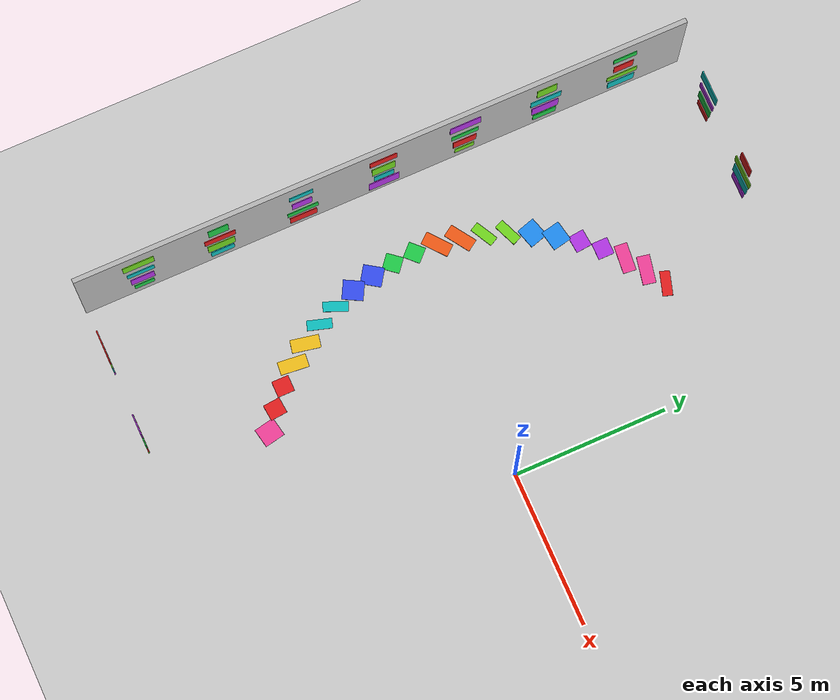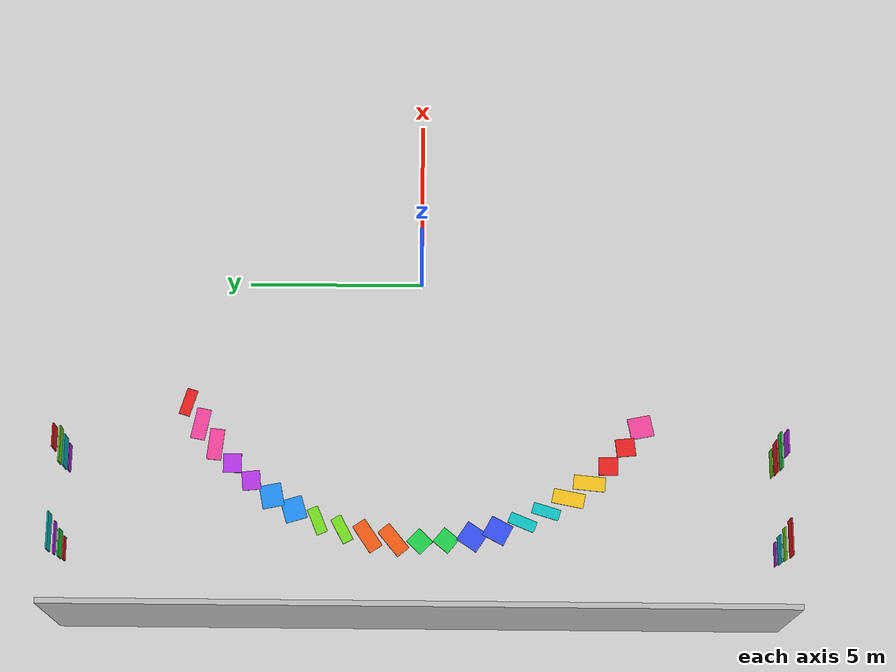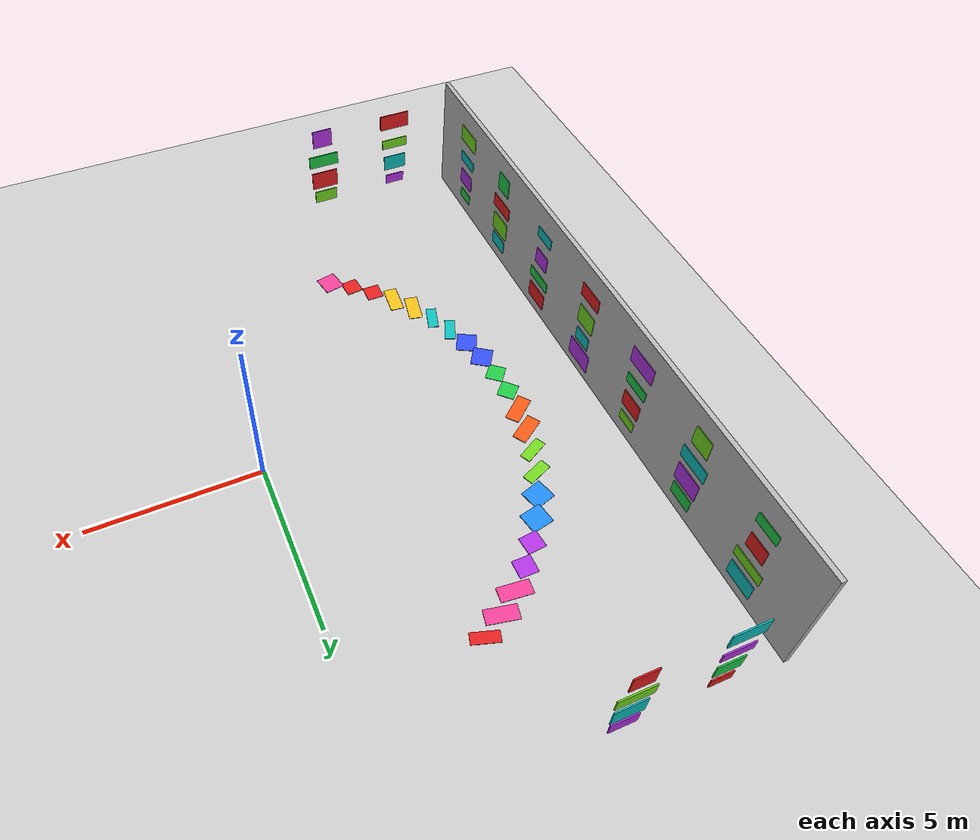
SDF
<sdf version="1.9">
 <world name="vio_marker_arena_double">
  <model name="ground_plane">
   <static>true</static>
   <link name="link">
    <collision name="collision">
     <geometry><plane><normal>0 0 1</normal><size>1 1</size></plane></geometry>
    </collision>
    <visual name="visual">
     <geometry><plane><normal>0 0 1</normal><size>500 500</size></plane></geometry>
     <material>
      <ambient>0.8 0.8 0.8 1</ambient>
      <diffuse>0.8 0.8 0.8 1</diffuse>
      <specular>0.8 0.8 0.8 1</specular>
     </material>
    </visual>
    <inertial>
     <mass>1</mass>
     <inertia><ixx>1</ixx><ixy>0</ixy><ixz>0</ixz><iyy>1</iyy><iyz>0</iyz><izz>1</izz></inertia>
    </inertial>
   </link>
  </model>
  <model name="vio_wall_west">
   <static>true</static>
   <pose>-10.0000 0.0000 2.0000 0.0000 0.0000 0.0000</pose>
   <link name="link">
    <collision name="collision"><geometry><box><size>0.1500 20.0000 4.0000</size></box></geometry></collision>
    <visual name="visual">
     <geometry><box><size>0.1500 20.0000 4.0000</size></box></geometry>
     <material>
      <ambient>0.720 0.720 0.720 1.000</ambient>
      <diffuse>0.720 0.720 0.720 1.000</diffuse>
      <specular>0.10 0.10 0.10 1</specular>
      <emissive>0 0 0 1</emissive>
     </material>
    </visual>
   </link>
  </model>
  <model name="vio_panel_north_0_0">
   <static>true</static>
   <pose>-8.0000 9.9190 0.6500 0.0000 0.0000 0.0000</pose>
   <link name="link">
    <visual name="visual">
     <geometry><box><size>0.6500 0.0350 0.3500</size></box></geometry>
     <material>
      <ambient>0.900 0.120 0.120 1.000</ambient>
      <diffuse>0.900 0.120 0.120 1.000</diffuse>
      <specular>0.10 0.10 0.10 1</specular>
      <emissive>0 0 0 1</emissive>
     </material>
    </visual>
   </link>
  </model>
  <model name="vio_panel_north_0_1">
   <static>true</static>
   <pose>-5.4000 9.9190 0.6500 0.0000 0.0000 0.0000</pose>
   <link name="link">
    <visual name="visual">
     <geometry><box><size>0.7700 0.0350 0.4500</size></box></geometry>
     <material>
      <ambient>0.700 0.200 0.900 1.000</ambient>
      <diffuse>0.700 0.200 0.900 1.000</diffuse>
      <specular>0.10 0.10 0.10 1</specular>
      <emissive>0 0 0 1</emissive>
     </material>
    </visual>
   </link>
  </model>
  <model name="vio_panel_north_1_0">
   <static>true</static>
   <pose>-8.0000 9.9190 1.3500 0.0000 0.0000 0.0000</pose>
   <link name="link">
    <visual name="visual">
     <geometry><box><size>0.7700 0.0350 0.5500</size></box></geometry>
     <material>
      <ambient>0.120 0.800 0.280 1.000</ambient>
      <diffuse>0.120 0.800 0.280 1.000</diffuse>
      <specular>0.10 0.10 0.10 1</specular>
      <emissive>0 0 0 1</emissive>
     </material>
    </visual>
   </link>
  </model>
  <model name="vio_panel_north_1_1">
   <static>true</static>
   <pose>-5.4000 9.9190 1.3500 0.0000 0.0000 0.0000</pose>
   <link name="link">
    <visual name="visual">
     <geometry><box><size>0.8900 0.0350 0.6500</size></box></geometry>
     <material>
      <ambient>0.050 0.750 0.750 1.000</ambient>
      <diffuse>0.050 0.750 0.750 1.000</diffuse>
      <specular>0.10 0.10 0.10 1</specular>
      <emissive>0 0 0 1</emissive>
     </material>
    </visual>
   </link>
  </model>
  <model name="vio_panel_north_2_0">
   <static>true</static>
   <pose>-8.0000 9.9190 2.1500 0.0000 0.0000 0.0000</pose>
   <link name="link">
    <visual name="visual">
     <geometry><box><size>0.8900 0.0350 0.3500</size></box></geometry>
     <material>
      <ambient>0.700 0.200 0.900 1.000</ambient>
      <diffuse>0.700 0.200 0.900 1.000</diffuse>
      <specular>0.10 0.10 0.10 1</specular>
      <emissive>0 0 0 1</emissive>
     </material>
    </visual>
   </link>
  </model>
  <model name="vio_panel_north_2_1">
   <static>true</static>
   <pose>-5.4000 9.9190 2.1500 0.0000 0.0000 0.0000</pose>
   <link name="link">
    <visual name="visual">
     <geometry><box><size>1.0100 0.0350 0.4500</size></box></geometry>
     <material>
      <ambient>0.450 0.850 0.120 1.000</ambient>
      <diffuse>0.450 0.850 0.120 1.000</diffuse>
      <specular>0.10 0.10 0.10 1</specular>
      <emissive>0 0 0 1</emissive>
     </material>
    </visual>
   </link>
  </model>
  <model name="vio_panel_north_3_0">
   <static>true</static>
   <pose>-8.0000 9.9190 3.0500 0.0000 0.0000 0.0000</pose>
   <link name="link">
    <visual name="visual">
     <geometry><box><size>1.0100 0.0350 0.5500</size></box></geometry>
     <material>
      <ambient>0.050 0.750 0.750 1.000</ambient>
      <diffuse>0.050 0.750 0.750 1.000</diffuse>
      <specular>0.10 0.10 0.10 1</specular>
      <emissive>0 0 0 1</emissive>
     </material>
    </visual>
   </link>
  </model>
  <model name="vio_panel_north_3_1">
   <static>true</static>
   <pose>-5.4000 9.9190 3.0500 0.0000 0.0000 0.0000</pose>
   <link name="link">
    <visual name="visual">
     <geometry><box><size>0.6500 0.0350 0.6500</size></box></geometry>
     <material>
      <ambient>0.900 0.120 0.120 1.000</ambient>
      <diffuse>0.900 0.120 0.120 1.000</diffuse>
      <specular>0.10 0.10 0.10 1</specular>
      <emissive>0 0 0 1</emissive>
     </material>
    </visual>
   </link>
  </model>
  <model name="vio_panel_south_0_0">
   <static>true</static>
   <pose>-8.0000 -9.9190 0.6500 0.0000 0.0000 0.0000</pose>
   <link name="link">
    <visual name="visual">
     <geometry><box><size>0.6500 0.0350 0.3500</size></box></geometry>
     <material>
      <ambient>0.700 0.200 0.900 1.000</ambient>
      <diffuse>0.700 0.200 0.900 1.000</diffuse>
      <specular>0.10 0.10 0.10 1</specular>
      <emissive>0 0 0 1</emissive>
     </material>
    </visual>
   </link>
  </model>
  <model name="vio_panel_south_0_1">
   <static>true</static>
   <pose>-5.4000 -9.9190 0.6500 0.0000 0.0000 0.0000</pose>
   <link name="link">
    <visual name="visual">
     <geometry><box><size>0.7700 0.0350 0.4500</size></box></geometry>
     <material>
      <ambient>0.450 0.850 0.120 1.000</ambient>
      <diffuse>0.450 0.850 0.120 1.000</diffuse>
      <specular>0.10 0.10 0.10 1</specular>
      <emissive>0 0 0 1</emissive>
     </material>
    </visual>
   </link>
  </model>
  <model name="vio_panel_south_1_0">
   <static>true</static>
   <pose>-8.0000 -9.9190 1.3500 0.0000 0.0000 0.0000</pose>
   <link name="link">
    <visual name="visual">
     <geometry><box><size>0.7700 0.0350 0.5500</size></box></geometry>
     <material>
      <ambient>0.050 0.750 0.750 1.000</ambient>
      <diffuse>0.050 0.750 0.750 1.000</diffuse>
      <specular>0.10 0.10 0.10 1</specular>
      <emissive>0 0 0 1</emissive>
     </material>
    </visual>
   </link>
  </model>
  <model name="vio_panel_south_1_1">
   <static>true</static>
   <pose>-5.4000 -9.9190 1.3500 0.0000 0.0000 0.0000</pose>
   <link name="link">
    <visual name="visual">
     <geometry><box><size>0.8900 0.0350 0.6500</size></box></geometry>
     <material>
      <ambient>0.900 0.120 0.120 1.000</ambient>
      <diffuse>0.900 0.120 0.120 1.000</diffuse>
      <specular>0.10 0.10 0.10 1</specular>
      <emissive>0 0 0 1</emissive>
     </material>
    </visual>
   </link>
  </model>
  <model name="vio_panel_south_2_0">
   <static>true</static>
   <pose>-8.0000 -9.9190 2.1500 0.0000 0.0000 0.0000</pose>
   <link name="link">
    <visual name="visual">
     <geometry><box><size>0.8900 0.0350 0.3500</size></box></geometry>
     <material>
      <ambient>0.450 0.850 0.120 1.000</ambient>
      <diffuse>0.450 0.850 0.120 1.000</diffuse>
      <specular>0.10 0.10 0.10 1</specular>
      <emissive>0 0 0 1</emissive>
     </material>
    </visual>
   </link>
  </model>
  <model name="vio_panel_south_2_1">
   <static>true</static>
   <pose>-5.4000 -9.9190 2.1500 0.0000 0.0000 0.0000</pose>
   <link name="link">
    <visual name="visual">
     <geometry><box><size>1.0100 0.0350 0.4500</size></box></geometry>
     <material>
      <ambient>0.120 0.800 0.280 1.000</ambient>
      <diffuse>0.120 0.800 0.280 1.000</diffuse>
      <specular>0.10 0.10 0.10 1</specular>
      <emissive>0 0 0 1</emissive>
     </material>
    </visual>
   </link>
  </model>
  <model name="vio_panel_south_3_0">
   <static>true</static>
   <pose>-8.0000 -9.9190 3.0500 0.0000 0.0000 0.0000</pose>
   <link name="link">
    <visual name="visual">
     <geometry><box><size>1.0100 0.0350 0.5500</size></box></geometry>
     <material>
      <ambient>0.900 0.120 0.120 1.000</ambient>
      <diffuse>0.900 0.120 0.120 1.000</diffuse>
      <specular>0.10 0.10 0.10 1</specular>
      <emissive>0 0 0 1</emissive>
     </material>
    </visual>
   </link>
  </model>
  <model name="vio_panel_south_3_1">
   <static>true</static>
   <pose>-5.4000 -9.9190 3.0500 0.0000 0.0000 0.0000</pose>
   <link name="link">
    <visual name="visual">
     <geometry><box><size>0.6500 0.0350 0.6500</size></box></geometry>
     <material>
      <ambient>0.700 0.200 0.900 1.000</ambient>
      <diffuse>0.700 0.200 0.900 1.000</diffuse>
      <specular>0.10 0.10 0.10 1</specular>
      <emissive>0 0 0 1</emissive>
     </material>
    </visual>
   </link>
  </model>
  <model name="vio_panel_west_0_0">
   <static>true</static>
   <pose>-9.9190 -8.0000 0.6500 0.0000 0.0000 0.0000</pose>
   <link name="link">
    <visual name="visual">
     <geometry><box><size>0.0350 0.6500 0.3500</size></box></geometry>
     <material>
      <ambient>0.120 0.800 0.280 1.000</ambient>
      <diffuse>0.120 0.800 0.280 1.000</diffuse>
      <specular>0.10 0.10 0.10 1</specular>
      <emissive>0 0 0 1</emissive>
     </material>
    </visual>
   </link>
  </model>
  <model name="vio_panel_west_0_1">
   <static>true</static>
   <pose>-9.9190 -5.4000 0.6500 0.0000 0.0000 0.0000</pose>
   <link name="link">
    <visual name="visual">
     <geometry><box><size>0.0350 0.7700 0.4500</size></box></geometry>
     <material>
      <ambient>0.050 0.750 0.750 1.000</ambient>
      <diffuse>0.050 0.750 0.750 1.000</diffuse>
      <specular>0.10 0.10 0.10 1</specular>
      <emissive>0 0 0 1</emissive>
     </material>
    </visual>
   </link>
  </model>
  <model name="vio_panel_west_0_2">
   <static>true</static>
   <pose>-9.9190 -2.7000 0.6500 0.0000 0.0000 0.0000</pose>
   <link name="link">
    <visual name="visual">
     <geometry><box><size>0.0350 0.8900 0.5500</size></box></geometry>
     <material>
      <ambient>0.900 0.120 0.120 1.000</ambient>
      <diffuse>0.900 0.120 0.120 1.000</diffuse>
      <specular>0.10 0.10 0.10 1</specular>
      <emissive>0 0 0 1</emissive>
     </material>
    </visual>
   </link>
  </model>
  <model name="vio_panel_west_0_3">
   <static>true</static>
   <pose>-9.9190 0.0000 0.6500 0.0000 0.0000 0.0000</pose>
   <link name="link">
    <visual name="visual">
     <geometry><box><size>0.0350 1.0100 0.6500</size></box></geometry>
     <material>
      <ambient>0.700 0.200 0.900 1.000</ambient>
      <diffuse>0.700 0.200 0.900 1.000</diffuse>
      <specular>0.10 0.10 0.10 1</specular>
      <emissive>0 0 0 1</emissive>
     </material>
    </visual>
   </link>
  </model>
  <model name="vio_panel_west_0_4">
   <static>true</static>
   <pose>-9.9190 2.7000 0.6500 0.0000 0.0000 0.0000</pose>
   <link name="link">
    <visual name="visual">
     <geometry><box><size>0.0350 0.6500 0.3500</size></box></geometry>
     <material>
      <ambient>0.450 0.850 0.120 1.000</ambient>
      <diffuse>0.450 0.850 0.120 1.000</diffuse>
      <specular>0.10 0.10 0.10 1</specular>
      <emissive>0 0 0 1</emissive>
     </material>
    </visual>
   </link>
  </model>
  <model name="vio_panel_west_0_5">
   <static>true</static>
   <pose>-9.9190 5.4000 0.6500 0.0000 0.0000 0.0000</pose>
   <link name="link">
    <visual name="visual">
     <geometry><box><size>0.0350 0.7700 0.4500</size></box></geometry>
     <material>
      <ambient>0.120 0.800 0.280 1.000</ambient>
      <diffuse>0.120 0.800 0.280 1.000</diffuse>
      <specular>0.10 0.10 0.10 1</specular>
      <emissive>0 0 0 1</emissive>
     </material>
    </visual>
   </link>
  </model>
  <model name="vio_panel_west_0_6">
   <static>true</static>
   <pose>-9.9190 8.0000 0.6500 0.0000 0.0000 0.0000</pose>
   <link name="link">
    <visual name="visual">
     <geometry><box><size>0.0350 0.8900 0.5500</size></box></geometry>
     <material>
      <ambient>0.050 0.750 0.750 1.000</ambient>
      <diffuse>0.050 0.750 0.750 1.000</diffuse>
      <specular>0.10 0.10 0.10 1</specular>
      <emissive>0 0 0 1</emissive>
     </material>
    </visual>
   </link>
  </model>
  <model name="vio_panel_west_1_0">
   <static>true</static>
   <pose>-9.9190 -8.0000 1.3500 0.0000 0.0000 0.0000</pose>
   <link name="link">
    <visual name="visual">
     <geometry><box><size>0.0350 0.7700 0.5500</size></box></geometry>
     <material>
      <ambient>0.700 0.200 0.900 1.000</ambient>
      <diffuse>0.700 0.200 0.900 1.000</diffuse>
      <specular>0.10 0.10 0.10 1</specular>
      <emissive>0 0 0 1</emissive>
     </material>
    </visual>
   </link>
  </model>
  <model name="vio_panel_west_1_1">
   <static>true</static>
   <pose>-9.9190 -5.4000 1.3500 0.0000 0.0000 0.0000</pose>
   <link name="link">
    <visual name="visual">
     <geometry><box><size>0.0350 0.8900 0.6500</size></box></geometry>
     <material>
      <ambient>0.450 0.850 0.120 1.000</ambient>
      <diffuse>0.450 0.850 0.120 1.000</diffuse>
      <specular>0.10 0.10 0.10 1</specular>
      <emissive>0 0 0 1</emissive>
     </material>
    </visual>
   </link>
  </model>
  <model name="vio_panel_west_1_2">
   <static>true</static>
   <pose>-9.9190 -2.7000 1.3500 0.0000 0.0000 0.0000</pose>
   <link name="link">
    <visual name="visual">
     <geometry><box><size>0.0350 1.0100 0.3500</size></box></geometry>
     <material>
      <ambient>0.120 0.800 0.280 1.000</ambient>
      <diffuse>0.120 0.800 0.280 1.000</diffuse>
      <specular>0.10 0.10 0.10 1</specular>
      <emissive>0 0 0 1</emissive>
     </material>
    </visual>
   </link>
  </model>
  <model name="vio_panel_west_1_3">
   <static>true</static>
   <pose>-9.9190 0.0000 1.3500 0.0000 0.0000 0.0000</pose>
   <link name="link">
    <visual name="visual">
     <geometry><box><size>0.0350 0.6500 0.4500</size></box></geometry>
     <material>
      <ambient>0.050 0.750 0.750 1.000</ambient>
      <diffuse>0.050 0.750 0.750 1.000</diffuse>
      <specular>0.10 0.10 0.10 1</specular>
      <emissive>0 0 0 1</emissive>
     </material>
    </visual>
   </link>
  </model>
  <model name="vio_panel_west_1_4">
   <static>true</static>
   <pose>-9.9190 2.7000 1.3500 0.0000 0.0000 0.0000</pose>
   <link name="link">
    <visual name="visual">
     <geometry><box><size>0.0350 0.7700 0.5500</size></box></geometry>
     <material>
      <ambient>0.900 0.120 0.120 1.000</ambient>
      <diffuse>0.900 0.120 0.120 1.000</diffuse>
      <specular>0.10 0.10 0.10 1</specular>
      <emissive>0 0 0 1</emissive>
     </material>
    </visual>
   </link>
  </model>
  <model name="vio_panel_west_1_5">
   <static>true</static>
   <pose>-9.9190 5.4000 1.3500 0.0000 0.0000 0.0000</pose>
   <link name="link">
    <visual name="visual">
     <geometry><box><size>0.0350 0.8900 0.6500</size></box></geometry>
     <material>
      <ambient>0.700 0.200 0.900 1.000</ambient>
      <diffuse>0.700 0.200 0.900 1.000</diffuse>
      <specular>0.10 0.10 0.10 1</specular>
      <emissive>0 0 0 1</emissive>
     </material>
    </visual>
   </link>
  </model>
  <model name="vio_panel_west_1_6">
   <static>true</static>
   <pose>-9.9190 8.0000 1.3500 0.0000 0.0000 0.0000</pose>
   <link name="link">
    <visual name="visual">
     <geometry><box><size>0.0350 1.0100 0.3500</size></box></geometry>
     <material>
      <ambient>0.450 0.850 0.120 1.000</ambient>
      <diffuse>0.450 0.850 0.120 1.000</diffuse>
      <specular>0.10 0.10 0.10 1</specular>
      <emissive>0 0 0 1</emissive>
     </material>
    </visual>
   </link>
  </model>
  <model name="vio_panel_west_2_0">
   <static>true</static>
   <pose>-9.9190 -8.0000 2.1500 0.0000 0.0000 0.0000</pose>
   <link name="link">
    <visual name="visual">
     <geometry><box><size>0.0350 0.8900 0.3500</size></box></geometry>
     <material>
      <ambient>0.050 0.750 0.750 1.000</ambient>
      <diffuse>0.050 0.750 0.750 1.000</diffuse>
      <specular>0.10 0.10 0.10 1</specular>
      <emissive>0 0 0 1</emissive>
     </material>
    </visual>
   </link>
  </model>
  <model name="vio_panel_west_2_1">
   <static>true</static>
   <pose>-9.9190 -5.4000 2.1500 0.0000 0.0000 0.0000</pose>
   <link name="link">
    <visual name="visual">
     <geometry><box><size>0.0350 1.0100 0.4500</size></box></geometry>
     <material>
      <ambient>0.900 0.120 0.120 1.000</ambient>
      <diffuse>0.900 0.120 0.120 1.000</diffuse>
      <specular>0.10 0.10 0.10 1</specular>
      <emissive>0 0 0 1</emissive>
     </material>
    </visual>
   </link>
  </model>
  <model name="vio_panel_west_2_2">
   <static>true</static>
   <pose>-9.9190 -2.7000 2.1500 0.0000 0.0000 0.0000</pose>
   <link name="link">
    <visual name="visual">
     <geometry><box><size>0.0350 0.6500 0.5500</size></box></geometry>
     <material>
      <ambient>0.700 0.200 0.900 1.000</ambient>
      <diffuse>0.700 0.200 0.900 1.000</diffuse>
      <specular>0.10 0.10 0.10 1</specular>
      <emissive>0 0 0 1</emissive>
     </material>
    </visual>
   </link>
  </model>
  <model name="vio_panel_west_2_3">
   <static>true</static>
   <pose>-9.9190 0.0000 2.1500 0.0000 0.0000 0.0000</pose>
   <link name="link">
    <visual name="visual">
     <geometry><box><size>0.0350 0.7700 0.6500</size></box></geometry>
     <material>
      <ambient>0.450 0.850 0.120 1.000</ambient>
      <diffuse>0.450 0.850 0.120 1.000</diffuse>
      <specular>0.10 0.10 0.10 1</specular>
      <emissive>0 0 0 1</emissive>
     </material>
    </visual>
   </link>
  </model>
  <model name="vio_panel_west_2_4">
   <static>true</static>
   <pose>-9.9190 2.7000 2.1500 0.0000 0.0000 0.0000</pose>
   <link name="link">
    <visual name="visual">
     <geometry><box><size>0.0350 0.8900 0.3500</size></box></geometry>
     <material>
      <ambient>0.120 0.800 0.280 1.000</ambient>
      <diffuse>0.120 0.800 0.280 1.000</diffuse>
      <specular>0.10 0.10 0.10 1</specular>
      <emissive>0 0 0 1</emissive>
     </material>
    </visual>
   </link>
  </model>
  <model name="vio_panel_west_2_5">
   <static>true</static>
   <pose>-9.9190 5.4000 2.1500 0.0000 0.0000 0.0000</pose>
   <link name="link">
    <visual name="visual">
     <geometry><box><size>0.0350 1.0100 0.4500</size></box></geometry>
     <material>
      <ambient>0.050 0.750 0.750 1.000</ambient>
      <diffuse>0.050 0.750 0.750 1.000</diffuse>
      <specular>0.10 0.10 0.10 1</specular>
      <emissive>0 0 0 1</emissive>
     </material>
    </visual>
   </link>
  </model>
  <model name="vio_panel_west_2_6">
   <static>true</static>
   <pose>-9.9190 8.0000 2.1500 0.0000 0.0000 0.0000</pose>
   <link name="link">
    <visual name="visual">
     <geometry><box><size>0.0350 0.6500 0.5500</size></box></geometry>
     <material>
      <ambient>0.900 0.120 0.120 1.000</ambient>
      <diffuse>0.900 0.120 0.120 1.000</diffuse>
      <specular>0.10 0.10 0.10 1</specular>
      <emissive>0 0 0 1</emissive>
     </material>
    </visual>
   </link>
  </model>
  <model name="vio_panel_west_3_0">
   <static>true</static>
   <pose>-9.9190 -8.0000 3.0500 0.0000 0.0000 0.0000</pose>
   <link name="link">
    <visual name="visual">
     <geometry><box><size>0.0350 1.0100 0.5500</size></box></geometry>
     <material>
      <ambient>0.450 0.850 0.120 1.000</ambient>
      <diffuse>0.450 0.850 0.120 1.000</diffuse>
      <specular>0.10 0.10 0.10 1</specular>
      <emissive>0 0 0 1</emissive>
     </material>
    </visual>
   </link>
  </model>
  <model name="vio_panel_west_3_1">
   <static>true</static>
   <pose>-9.9190 -5.4000 3.0500 0.0000 0.0000 0.0000</pose>
   <link name="link">
    <visual name="visual">
     <geometry><box><size>0.0350 0.6500 0.6500</size></box></geometry>
     <material>
      <ambient>0.120 0.800 0.280 1.000</ambient>
      <diffuse>0.120 0.800 0.280 1.000</diffuse>
      <specular>0.10 0.10 0.10 1</specular>
      <emissive>0 0 0 1</emissive>
     </material>
    </visual>
   </link>
  </model>
  <model name="vio_panel_west_3_2">
   <static>true</static>
   <pose>-9.9190 -2.7000 3.0500 0.0000 0.0000 0.0000</pose>
   <link name="link">
    <visual name="visual">
     <geometry><box><size>0.0350 0.7700 0.3500</size></box></geometry>
     <material>
      <ambient>0.050 0.750 0.750 1.000</ambient>
      <diffuse>0.050 0.750 0.750 1.000</diffuse>
      <specular>0.10 0.10 0.10 1</specular>
      <emissive>0 0 0 1</emissive>
     </material>
    </visual>
   </link>
  </model>
  <model name="vio_panel_west_3_3">
   <static>true</static>
   <pose>-9.9190 0.0000 3.0500 0.0000 0.0000 0.0000</pose>
   <link name="link">
    <visual name="visual">
     <geometry><box><size>0.0350 0.8900 0.4500</size></box></geometry>
     <material>
      <ambient>0.900 0.120 0.120 1.000</ambient>
      <diffuse>0.900 0.120 0.120 1.000</diffuse>
      <specular>0.10 0.10 0.10 1</specular>
      <emissive>0 0 0 1</emissive>
     </material>
    </visual>
   </link>
  </model>
  <model name="vio_panel_west_3_4">
   <static>true</static>
   <pose>-9.9190 2.7000 3.0500 0.0000 0.0000 0.0000</pose>
   <link name="link">
    <visual name="visual">
     <geometry><box><size>0.0350 1.0100 0.5500</size></box></geometry>
     <material>
      <ambient>0.700 0.200 0.900 1.000</ambient>
      <diffuse>0.700 0.200 0.900 1.000</diffuse>
      <specular>0.10 0.10 0.10 1</specular>
      <emissive>0 0 0 1</emissive>
     </material>
    </visual>
   </link>
  </model>
  <model name="vio_panel_west_3_5">
   <static>true</static>
   <pose>-9.9190 5.4000 3.0500 0.0000 0.0000 0.0000</pose>
   <link name="link">
    <visual name="visual">
     <geometry><box><size>0.0350 0.6500 0.6500</size></box></geometry>
     <material>
      <ambient>0.450 0.850 0.120 1.000</ambient>
      <diffuse>0.450 0.850 0.120 1.000</diffuse>
      <specular>0.10 0.10 0.10 1</specular>
      <emissive>0 0 0 1</emissive>
     </material>
    </visual>
   </link>
  </model>
  <model name="vio_panel_west_3_6">
   <static>true</static>
   <pose>-9.9190 8.0000 3.0500 0.0000 0.0000 0.0000</pose>
   <link name="link">
    <visual name="visual">
     <geometry><box><size>0.0350 0.7700 0.3500</size></box></geometry>
     <material>
      <ambient>0.120 0.800 0.280 1.000</ambient>
      <diffuse>0.120 0.800 0.280 1.000</diffuse>
      <specular>0.10 0.10 0.10 1</specular>
      <emissive>0 0 0 1</emissive>
     </material>
    </visual>
   </link>
  </model>
  <model name="vio_floor_marker_11">
   <static>true</static>
   <pose>-4.2223 6.3192 0.0120 0.0000 0.0000 2.9452</pose>
   <link name="link">
    <visual name="visual">
     <geometry><box><size>0.9100 0.4200 0.0180</size></box></geometry>
     <material>
      <ambient>0.950 0.250 0.600 1.000</ambient>
      <diffuse>0.950 0.250 0.600 1.000</diffuse>
      <specular>0.10 0.10 0.10 1</specular>
      <emissive>0 0 0 1</emissive>
     </material>
    </visual>
   </link>
  </model>
  <model name="vio_floor_marker_12">
   <static>true</static>
   <pose>-5.3740 5.3740 0.0120 0.0000 0.0000 3.1416</pose>
   <link name="link">
    <visual name="visual">
     <geometry><box><size>0.5500 0.5200 0.0180</size></box></geometry>
     <material>
      <ambient>0.700 0.200 0.900 1.000</ambient>
      <diffuse>0.700 0.200 0.900 1.000</diffuse>
      <specular>0.10 0.10 0.10 1</specular>
      <emissive>0 0 0 1</emissive>
     </material>
    </visual>
   </link>
  </model>
  <model name="vio_floor_marker_13">
   <static>true</static>
   <pose>-6.3192 4.2223 0.0120 0.0000 0.0000 3.3379</pose>
   <link name="link">
    <visual name="visual">
     <geometry><box><size>0.6700 0.6200 0.0180</size></box></geometry>
     <material>
      <ambient>0.120 0.550 0.950 1.000</ambient>
      <diffuse>0.120 0.550 0.950 1.000</diffuse>
      <specular>0.10 0.10 0.10 1</specular>
      <emissive>0 0 0 1</emissive>
     </material>
    </visual>
   </link>
  </model>
  <model name="vio_floor_marker_14">
   <static>true</static>
   <pose>-7.0215 2.9084 0.0120 0.0000 0.0000 3.5343</pose>
   <link name="link">
    <visual name="visual">
     <geometry><box><size>0.7900 0.3200 0.0180</size></box></geometry>
     <material>
      <ambient>0.450 0.850 0.120 1.000</ambient>
      <diffuse>0.450 0.850 0.120 1.000</diffuse>
      <specular>0.10 0.10 0.10 1</specular>
      <emissive>0 0 0 1</emissive>
     </material>
    </visual>
   </link>
  </model>
  <model name="vio_floor_marker_15">
   <static>true</static>
   <pose>-7.4540 1.4827 0.0120 0.0000 0.0000 3.7306</pose>
   <link name="link">
    <visual name="visual">
     <geometry><box><size>0.9100 0.4200 0.0180</size></box></geometry>
     <material>
      <ambient>0.950 0.350 0.080 1.000</ambient>
      <diffuse>0.950 0.350 0.080 1.000</diffuse>
      <specular>0.10 0.10 0.10 1</specular>
      <emissive>0 0 0 1</emissive>
     </material>
    </visual>
   </link>
  </model>
  <model name="vio_floor_marker_16">
   <static>true</static>
   <pose>-7.6000 0.0000 0.0120 0.0000 0.0000 3.9270</pose>
   <link name="link">
    <visual name="visual">
     <geometry><box><size>0.5500 0.5200 0.0180</size></box></geometry>
     <material>
      <ambient>0.120 0.800 0.280 1.000</ambient>
      <diffuse>0.120 0.800 0.280 1.000</diffuse>
      <specular>0.10 0.10 0.10 1</specular>
      <emissive>0 0 0 1</emissive>
     </material>
    </visual>
   </link>
  </model>
  <model name="vio_floor_marker_17">
   <static>true</static>
   <pose>-7.4540 -1.4827 0.0120 0.0000 0.0000 4.1233</pose>
   <link name="link">
    <visual name="visual">
     <geometry><box><size>0.6700 0.6200 0.0180</size></box></geometry>
     <material>
      <ambient>0.200 0.300 0.950 1.000</ambient>
      <diffuse>0.200 0.300 0.950 1.000</diffuse>
      <specular>0.10 0.10 0.10 1</specular>
      <emissive>0 0 0 1</emissive>
     </material>
    </visual>
   </link>
  </model>
  <model name="vio_floor_marker_18">
   <static>true</static>
   <pose>-7.0215 -2.9084 0.0120 0.0000 0.0000 4.3197</pose>
   <link name="link">
    <visual name="visual">
     <geometry><box><size>0.7900 0.3200 0.0180</size></box></geometry>
     <material>
      <ambient>0.050 0.750 0.750 1.000</ambient>
      <diffuse>0.050 0.750 0.750 1.000</diffuse>
      <specular>0.10 0.10 0.10 1</specular>
      <emissive>0 0 0 1</emissive>
     </material>
    </visual>
   </link>
  </model>
  <model name="vio_floor_marker_19">
   <static>true</static>
   <pose>-6.3192 -4.2223 0.0120 0.0000 0.0000 4.5160</pose>
   <link name="link">
    <visual name="visual">
     <geometry><box><size>0.9100 0.4200 0.0180</size></box></geometry>
     <material>
      <ambient>0.950 0.750 0.100 1.000</ambient>
      <diffuse>0.950 0.750 0.100 1.000</diffuse>
      <specular>0.10 0.10 0.10 1</specular>
      <emissive>0 0 0 1</emissive>
     </material>
    </visual>
   </link>
  </model>
  <model name="vio_floor_marker_20">
   <static>true</static>
   <pose>-5.3740 -5.3740 0.0120 0.0000 0.0000 4.7124</pose>
   <link name="link">
    <visual name="visual">
     <geometry><box><size>0.5500 0.5200 0.0180</size></box></geometry>
     <material>
      <ambient>0.900 0.120 0.120 1.000</ambient>
      <diffuse>0.900 0.120 0.120 1.000</diffuse>
      <specular>0.10 0.10 0.10 1</specular>
      <emissive>0 0 0 1</emissive>
     </material>
    </visual>
   </link>
  </model>
  <model name="vio_floor_marker_21">
   <static>true</static>
   <pose>-4.2223 -6.3192 0.0120 0.0000 0.0000 4.9087</pose>
   <link name="link">
    <visual name="visual">
     <geometry><box><size>0.6700 0.6200 0.0180</size></box></geometry>
     <material>
      <ambient>0.950 0.250 0.600 1.000</ambient>
      <diffuse>0.950 0.250 0.600 1.000</diffuse>
      <specular>0.10 0.10 0.10 1</specular>
      <emissive>0 0 0 1</emissive>
     </material>
    </visual>
   </link>
  </model>
  <model name="vio_floor_marker_extra_10">
   <static>true</static>
   <pose>-3.5826 6.7026 0.0120 0.0000 0.0000 2.8471</pose>
   <link name="link">
    <visual name="visual">
     <geometry><box><size>0.7900 0.3200 0.0180</size></box></geometry>
     <material>
      <ambient>0.900 0.120 0.120 1.000</ambient>
      <diffuse>0.900 0.120 0.120 1.000</diffuse>
      <specular>0.10 0.10 0.10 1</specular>
      <emissive>0 0 0 1</emissive>
     </material>
    </visual>
   </link>
  </model>
  <model name="vio_floor_marker_extra_11">
   <static>true</static>
   <pose>-4.8214 5.8749 0.0120 0.0000 0.0000 3.0434</pose>
   <link name="link">
    <visual name="visual">
     <geometry><box><size>0.9100 0.4200 0.0180</size></box></geometry>
     <material>
      <ambient>0.950 0.250 0.600 1.000</ambient>
      <diffuse>0.950 0.250 0.600 1.000</diffuse>
      <specular>0.10 0.10 0.10 1</specular>
      <emissive>0 0 0 1</emissive>
     </material>
    </visual>
   </link>
  </model>
  <model name="vio_floor_marker_extra_12">
   <static>true</static>
   <pose>-5.8749 4.8214 0.0120 0.0000 0.0000 3.2398</pose>
   <link name="link">
    <visual name="visual">
     <geometry><box><size>0.5500 0.5200 0.0180</size></box></geometry>
     <material>
      <ambient>0.700 0.200 0.900 1.000</ambient>
      <diffuse>0.700 0.200 0.900 1.000</diffuse>
      <specular>0.10 0.10 0.10 1</specular>
      <emissive>0 0 0 1</emissive>
     </material>
    </visual>
   </link>
  </model>
  <model name="vio_floor_marker_extra_13">
   <static>true</static>
   <pose>-6.7026 3.5826 0.0120 0.0000 0.0000 3.4361</pose>
   <link name="link">
    <visual name="visual">
     <geometry><box><size>0.6700 0.6200 0.0180</size></box></geometry>
     <material>
      <ambient>0.120 0.550 0.950 1.000</ambient>
      <diffuse>0.120 0.550 0.950 1.000</diffuse>
      <specular>0.10 0.10 0.10 1</specular>
      <emissive>0 0 0 1</emissive>
     </material>
    </visual>
   </link>
  </model>
  <model name="vio_floor_marker_extra_14">
   <static>true</static>
   <pose>-7.2727 2.2062 0.0120 0.0000 0.0000 3.6325</pose>
   <link name="link">
    <visual name="visual">
     <geometry><box><size>0.7900 0.3200 0.0180</size></box></geometry>
     <material>
      <ambient>0.450 0.850 0.120 1.000</ambient>
      <diffuse>0.450 0.850 0.120 1.000</diffuse>
      <specular>0.10 0.10 0.10 1</specular>
      <emissive>0 0 0 1</emissive>
     </material>
    </visual>
   </link>
  </model>
  <model name="vio_floor_marker_extra_15">
   <static>true</static>
   <pose>-7.5634 0.7449 0.0120 0.0000 0.0000 3.8288</pose>
   <link name="link">
    <visual name="visual">
     <geometry><box><size>0.9100 0.4200 0.0180</size></box></geometry>
     <material>
      <ambient>0.950 0.350 0.080 1.000</ambient>
      <diffuse>0.950 0.350 0.080 1.000</diffuse>
      <specular>0.10 0.10 0.10 1</specular>
      <emissive>0 0 0 1</emissive>
     </material>
    </visual>
   </link>
  </model>
  <model name="vio_floor_marker_extra_16">
   <static>true</static>
   <pose>-7.5634 -0.7449 0.0120 0.0000 0.0000 4.0252</pose>
   <link name="link">
    <visual name="visual">
     <geometry><box><size>0.5500 0.5200 0.0180</size></box></geometry>
     <material>
      <ambient>0.120 0.800 0.280 1.000</ambient>
      <diffuse>0.120 0.800 0.280 1.000</diffuse>
      <specular>0.10 0.10 0.10 1</specular>
      <emissive>0 0 0 1</emissive>
     </material>
    </visual>
   </link>
  </model>
  <model name="vio_floor_marker_extra_17">
   <static>true</static>
   <pose>-7.2727 -2.2062 0.0120 0.0000 0.0000 4.2215</pose>
   <link name="link">
    <visual name="visual">
     <geometry><box><size>0.6700 0.6200 0.0180</size></box></geometry>
     <material>
      <ambient>0.200 0.300 0.950 1.000</ambient>
      <diffuse>0.200 0.300 0.950 1.000</diffuse>
      <specular>0.10 0.10 0.10 1</specular>
      <emissive>0 0 0 1</emissive>
     </material>
    </visual>
   </link>
  </model>
  <model name="vio_floor_marker_extra_18">
   <static>true</static>
   <pose>-6.7026 -3.5826 0.0120 0.0000 0.0000 4.4179</pose>
   <link name="link">
    <visual name="visual">
     <geometry><box><size>0.7900 0.3200 0.0180</size></box></geometry>
     <material>
      <ambient>0.050 0.750 0.750 1.000</ambient>
      <diffuse>0.050 0.750 0.750 1.000</diffuse>
      <specular>0.10 0.10 0.10 1</specular>
      <emissive>0 0 0 1</emissive>
     </material>
    </visual>
   </link>
  </model>
  <model name="vio_floor_marker_extra_19">
   <static>true</static>
   <pose>-5.8749 -4.8214 0.0120 0.0000 0.0000 4.6142</pose>
   <link name="link">
    <visual name="visual">
     <geometry><box><size>0.9100 0.4200 0.0180</size></box></geometry>
     <material>
      <ambient>0.950 0.750 0.100 1.000</ambient>
      <diffuse>0.950 0.750 0.100 1.000</diffuse>
      <specular>0.10 0.10 0.10 1</specular>
      <emissive>0 0 0 1</emissive>
     </material>
    </visual>
   </link>
  </model>
  <model name="vio_floor_marker_extra_20">
   <static>true</static>
   <pose>-4.8214 -5.8749 0.0120 0.0000 0.0000 4.8106</pose>
   <link name="link">
    <visual name="visual">
     <geometry><box><size>0.5500 0.5200 0.0180</size></box></geometry>
     <material>
      <ambient>0.900 0.120 0.120 1.000</ambient>
      <diffuse>0.900 0.120 0.120 1.000</diffuse>
      <specular>0.10 0.10 0.10 1</specular>
      <emissive>0 0 0 1</emissive>
     </material>
    </visual>
   </link>
  </model>
 </world>
</sdf>
